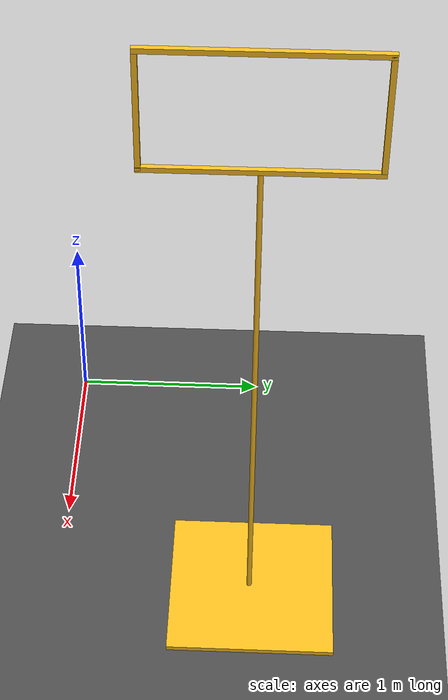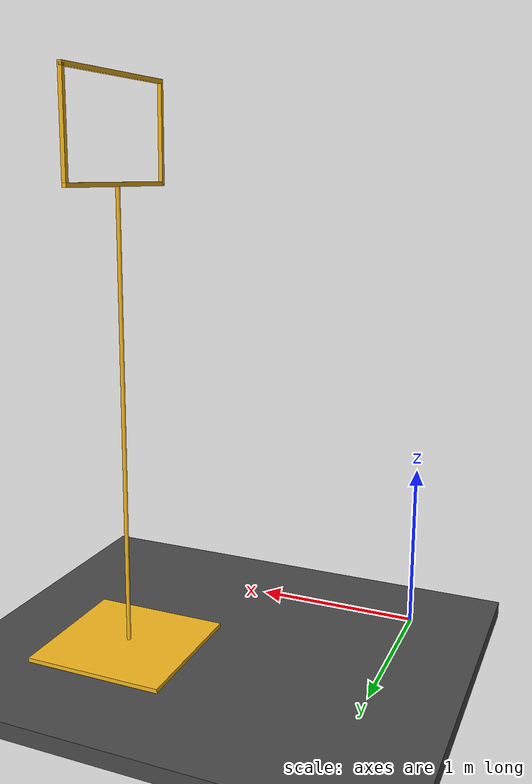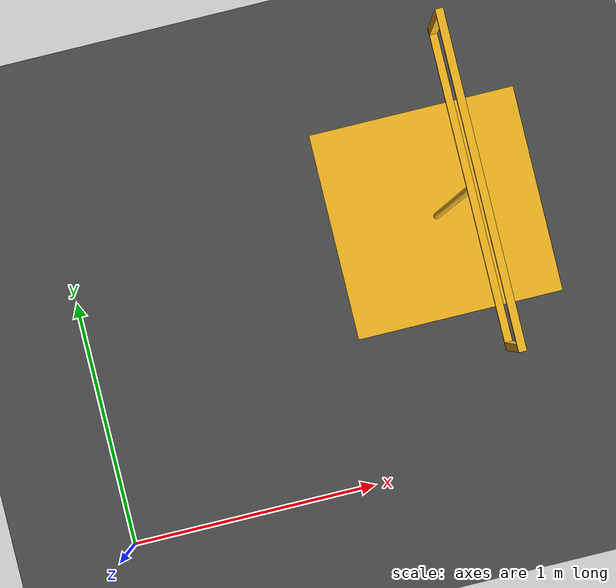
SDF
<sdf version="1.6">
 <world name="default">
  <model name="ground_plane">
   <static>1</static>
   <link name="link">
    <collision name="collision">
     <geometry><plane><normal>0 0 1</normal><size>100 100</size></plane></geometry>
     <surface>
      <contact><collide_bitmask>65535</collide_bitmask></contact>
      <friction><ode><mu>100</mu><mu2>50</mu2></ode></friction>
     </surface>
    </collision>
    <visual name="visual">
     <cast_shadows>0</cast_shadows>
     <geometry><plane><normal>0 0 1</normal><size>100 100</size></plane></geometry>
     <material>
      <script><uri>file://media/materials/scripts/gazebo.material</uri><name>Gazebo/Grey</name></script>
     </material>
    </visual>
   </link>
  </model>
  <model name="asphalt_plane">
   <static>1</static>
   <link name="link">
    <collision name="collision"><geometry><box><size>24.3086 24.3538 0.1</size></box></geometry></collision>
    <visual name="visual">
     <cast_shadows>0</cast_shadows>
     <geometry><box><size>24.3086 24.3538 0.1</size></box></geometry>
     <material>
      <script>
       <uri>model://asphalt_plane/materials/scripts</uri>
       <uri>model://asphalt_plane/materials/textures</uri>
       <name>vrc/asphalt</name>
      </script>
     </material>
    </visual>
   </link>
   <pose>0.83869 0.804741 -0.049 0 -0 0</pose>
  </model>
  <model name="Gate">
   <link name="link_2">
    <inertial>
     <mass>1e-08</mass>
     <inertia><ixx>0</ixx><ixy>0</ixy><ixz>0</ixz><iyy>0</iyy><iyz>0</iyz><izz>0</izz></inertia>
     <pose>0 0 0.0125 0 -0 0</pose>
    </inertial>
    <pose>0 -0 0.0125 0 -0 0</pose>
    <visual name="visual">
     <pose>0 0.0125 0 0 -0 0</pose>
     <geometry><box><size>0.85 0.85 0.025</size></box></geometry>
     <material>
      <lighting>1</lighting>
      <script><uri>file://media/materials/scripts/gazebo.material</uri><name>Gazebo/Grey</name></script>
      <shader type="pixel"><normal_map>__default__</normal_map></shader>
      <ambient>0.988 0.741 0.122 1</ambient>
      <diffuse>0.988 0.741 0.122 1</diffuse>
      <specular>0.988 0.741 0.122 1</specular>
      <emissive>0 0 0 1</emissive>
     </material>
    </visual>
    <collision name="collision">
     <pose>0 0.0125 0 0 -0 0</pose>
     <geometry><box><size>0.85 0.85 0.025</size></box></geometry>
     <surface>
      <friction>
       <ode><mu>1</mu><mu2>1</mu2><fdir1>0 0 0</fdir1><slip1>0</slip1><slip2>0</slip2></ode>
       <torsional>
        <coefficient>1</coefficient>
        <patch_radius>0</patch_radius>
        <surface_radius>0</surface_radius>
        <use_patch_radius>1</use_patch_radius>
        <ode><slip>0</slip></ode>
       </torsional>
      </friction>
      <bounce><restitution_coefficient>0</restitution_coefficient><threshold>1e+06</threshold></bounce>
      <contact>
       <collide_without_contact>0</collide_without_contact>
       <collide_without_contact_bitmask>1</collide_without_contact_bitmask>
       <collide_bitmask>1</collide_bitmask>
       <ode>
        <soft_cfm>0</soft_cfm>
        <soft_erp>0.2</soft_erp>
        <kp>1e+13</kp>
        <kd>1</kd>
        <max_vel>0.01</max_vel>
        <min_depth>0</min_depth>
       </ode>
       <bullet>
        <split_impulse>1</split_impulse>
        <split_impulse_penetration_threshold>-0.01</split_impulse_penetration_threshold>
        <soft_cfm>0</soft_cfm>
        <soft_erp>0.2</soft_erp>
        <kp>1e+13</kp>
        <kd>1</kd>
       </bullet>
      </contact>
     </surface>
    </collision>
   </link>
   <link name="link_3">
    <inertial>
     <mass>1.08113e-08</mass>
     <inertia>
      <ixx>6.71432e-09</ixx>
      <ixy>0</ixy>
      <ixz>0</ixz>
      <iyy>6.71432e-09</iyy>
      <iyz>0</iyz>
      <izz>8.44631e-13</izz>
     </inertia>
     <pose>0 0 1.525 0 -0 0</pose>
    </inertial>
    <pose>0 0 1.37026 0 -0 0</pose>
    <visual name="visual">
     <geometry><cylinder><radius>0.0125</radius><length>2.72985</length></cylinder></geometry>
     <material>
      <lighting>1</lighting>
      <script><uri>file://media/materials/scripts/gazebo.material</uri><name>Gazebo/Grey</name></script>
      <shader type="pixel"><normal_map>__default__</normal_map></shader>
      <ambient>0.988 0.741 0.122 1</ambient>
      <diffuse>0.988 0.741 0.122 1</diffuse>
      <specular>0.988 0.741 0.122 1</specular>
      <emissive>0 0 0 1</emissive>
     </material>
    </visual>
    <collision name="collision">
     <geometry><cylinder><radius>0.0125</radius><length>2.72985</length></cylinder></geometry>
     <surface>
      <friction>
       <ode><mu>1</mu><mu2>1</mu2><fdir1>0 0 0</fdir1><slip1>0</slip1><slip2>0</slip2></ode>
       <torsional>
        <coefficient>1</coefficient>
        <patch_radius>0</patch_radius>
        <surface_radius>0</surface_radius>
        <use_patch_radius>1</use_patch_radius>
        <ode><slip>0</slip></ode>
       </torsional>
      </friction>
      <bounce><restitution_coefficient>0</restitution_coefficient><threshold>1e+06</threshold></bounce>
      <contact>
       <collide_without_contact>0</collide_without_contact>
       <collide_without_contact_bitmask>1</collide_without_contact_bitmask>
       <collide_bitmask>1</collide_bitmask>
       <ode>
        <soft_cfm>0</soft_cfm>
        <soft_erp>0.2</soft_erp>
        <kp>1e+13</kp>
        <kd>1</kd>
        <max_vel>0.01</max_vel>
        <min_depth>0</min_depth>
       </ode>
       <bullet>
        <split_impulse>1</split_impulse>
        <split_impulse_penetration_threshold>-0.01</split_impulse_penetration_threshold>
        <soft_cfm>0</soft_cfm>
        <soft_erp>0.2</soft_erp>
        <kp>1e+13</kp>
        <kd>1</kd>
       </bullet>
      </contact>
     </surface>
    </collision>
   </link>
   <link name="link_5">
    <inertial>
     <mass>1e-08</mass>
     <inertia><ixx>0</ixx><ixy>0</ixy><ixz>0</ixz><iyy>0</iyy><iyz>0</iyz><izz>0</izz></inertia>
     <pose>0 0 2.5 0 -0 0</pose>
    </inertial>
    <pose>-0 -0 2.74233 0 -0 0</pose>
    <visual name="visual">
     <geometry><box><size>0.025 1.05 0.025</size></box></geometry>
     <material>
      <lighting>1</lighting>
      <script><uri>file://media/materials/scripts/gazebo.material</uri><name>Gazebo/Grey</name></script>
      <shader type="pixel"><normal_map>__default__</normal_map></shader>
      <ambient>0.988 0.741 0.122 1</ambient>
      <diffuse>0.988 0.741 0.122 1</diffuse>
      <specular>0.988 0.741 0.122 1</specular>
      <emissive>0 0 0 1</emissive>
     </material>
    </visual>
    <collision name="collision">
     <geometry><box><size>0.025 1.05 0.025</size></box></geometry>
     <surface>
      <friction>
       <ode><mu>1</mu><mu2>1</mu2><fdir1>0 0 0</fdir1><slip1>0</slip1><slip2>0</slip2></ode>
       <torsional>
        <coefficient>1</coefficient>
        <patch_radius>0</patch_radius>
        <surface_radius>0</surface_radius>
        <use_patch_radius>1</use_patch_radius>
        <ode><slip>0</slip></ode>
       </torsional>
      </friction>
      <bounce><restitution_coefficient>0</restitution_coefficient><threshold>1e+06</threshold></bounce>
      <contact>
       <collide_without_contact>0</collide_without_contact>
       <collide_without_contact_bitmask>1</collide_without_contact_bitmask>
       <collide_bitmask>1</collide_bitmask>
       <ode>
        <soft_cfm>0</soft_cfm>
        <soft_erp>0.2</soft_erp>
        <kp>1e+13</kp>
        <kd>1</kd>
        <max_vel>0.01</max_vel>
        <min_depth>0</min_depth>
       </ode>
       <bullet>
        <split_impulse>1</split_impulse>
        <split_impulse_penetration_threshold>-0.01</split_impulse_penetration_threshold>
        <soft_cfm>0</soft_cfm>
        <soft_erp>0.2</soft_erp>
        <kp>1e+13</kp>
        <kd>1</kd>
       </bullet>
      </contact>
     </surface>
    </collision>
   </link>
   <link name="link_5_clone">
    <inertial>
     <mass>1e-08</mass>
     <inertia><ixx>0</ixx><ixy>0</ixy><ixz>0</ixz><iyy>0</iyy><iyz>0</iyz><izz>0</izz></inertia>
     <pose>0 0 3.09 0 -0 0</pose>
    </inertial>
    <pose>-0 -0 3.32441 0 -0 0</pose>
    <visual name="visual">
     <geometry><box><size>0.025 1.05 0.025</size></box></geometry>
     <material>
      <lighting>1</lighting>
      <script><uri>file://media/materials/scripts/gazebo.material</uri><name>Gazebo/Grey</name></script>
      <shader type="pixel"><normal_map>__default__</normal_map></shader>
      <ambient>0.988 0.741 0.122 1</ambient>
      <diffuse>0.988 0.741 0.122 1</diffuse>
      <specular>0.988 0.741 0.122 1</specular>
      <emissive>0 0 0 1</emissive>
     </material>
    </visual>
    <collision name="collision">
     <geometry><box><size>0.025 1.05 0.025</size></box></geometry>
     <surface>
      <friction>
       <ode><mu>1</mu><mu2>1</mu2><fdir1>0 0 0</fdir1><slip1>0</slip1><slip2>0</slip2></ode>
       <torsional>
        <coefficient>1</coefficient>
        <patch_radius>0</patch_radius>
        <surface_radius>0</surface_radius>
        <use_patch_radius>1</use_patch_radius>
        <ode><slip>0</slip></ode>
       </torsional>
      </friction>
      <bounce><restitution_coefficient>0</restitution_coefficient><threshold>1e+06</threshold></bounce>
      <contact>
       <collide_without_contact>0</collide_without_contact>
       <collide_without_contact_bitmask>1</collide_without_contact_bitmask>
       <collide_bitmask>1</collide_bitmask>
       <ode>
        <soft_cfm>0</soft_cfm>
        <soft_erp>0.2</soft_erp>
        <kp>1e+13</kp>
        <kd>1</kd>
        <max_vel>0.01</max_vel>
        <min_depth>0</min_depth>
       </ode>
       <bullet>
        <split_impulse>1</split_impulse>
        <split_impulse_penetration_threshold>-0.01</split_impulse_penetration_threshold>
        <soft_cfm>0</soft_cfm>
        <soft_erp>0.2</soft_erp>
        <kp>1e+13</kp>
        <kd>1</kd>
       </bullet>
      </contact>
     </surface>
    </collision>
   </link>
   <link name="link_6">
    <inertial>
     <mass>1e-08</mass>
     <inertia><ixx>0</ixx><ixy>0</ixy><ixz>0</ixz><iyy>0</iyy><iyz>0</iyz><izz>0</izz></inertia>
     <pose>0 0.5125 2.85 0 -0 0</pose>
    </inertial>
    <pose>-0 0.5125 3.04087 0 -0 0</pose>
    <visual name="visual">
     <geometry><box><size>0.025 0.025 0.575</size></box></geometry>
     <material>
      <lighting>1</lighting>
      <script><uri>file://media/materials/scripts/gazebo.material</uri><name>Gazebo/Grey</name></script>
      <shader type="pixel"><normal_map>__default__</normal_map></shader>
      <ambient>0.988 0.741 0.122 1</ambient>
      <diffuse>0.988 0.741 0.122 1</diffuse>
      <specular>0.988 0.741 0.122 1</specular>
      <emissive>0 0 0 1</emissive>
     </material>
    </visual>
    <collision name="collision">
     <geometry><box><size>0.025 0.025 0.575</size></box></geometry>
     <surface>
      <friction>
       <ode><mu>1</mu><mu2>1</mu2><fdir1>0 0 0</fdir1><slip1>0</slip1><slip2>0</slip2></ode>
       <torsional>
        <coefficient>1</coefficient>
        <patch_radius>0</patch_radius>
        <surface_radius>0</surface_radius>
        <use_patch_radius>1</use_patch_radius>
        <ode><slip>0</slip></ode>
       </torsional>
      </friction>
      <bounce><restitution_coefficient>0</restitution_coefficient><threshold>1e+06</threshold></bounce>
      <contact>
       <collide_without_contact>0</collide_without_contact>
       <collide_without_contact_bitmask>1</collide_without_contact_bitmask>
       <collide_bitmask>1</collide_bitmask>
       <ode>
        <soft_cfm>0</soft_cfm>
        <soft_erp>0.2</soft_erp>
        <kp>1e+13</kp>
        <kd>1</kd>
        <max_vel>0.01</max_vel>
        <min_depth>0</min_depth>
       </ode>
       <bullet>
        <split_impulse>1</split_impulse>
        <split_impulse_penetration_threshold>-0.01</split_impulse_penetration_threshold>
        <soft_cfm>0</soft_cfm>
        <soft_erp>0.2</soft_erp>
        <kp>1e+13</kp>
        <kd>1</kd>
       </bullet>
      </contact>
     </surface>
    </collision>
   </link>
   <link name="link_6_clone">
    <inertial>
     <mass>1e-08</mass>
     <inertia><ixx>0</ixx><ixy>0</ixy><ixz>0</ixz><iyy>0</iyy><iyz>0</iyz><izz>0</izz></inertia>
     <pose>0 -0.5125 2.85 0 -0 0</pose>
    </inertial>
    <pose>-0 -0.5125 3.02444 0 -0 0</pose>
    <visual name="visual">
     <geometry><box><size>0.025 0.025 0.575</size></box></geometry>
     <material>
      <lighting>1</lighting>
      <script><uri>file://media/materials/scripts/gazebo.material</uri><name>Gazebo/Grey</name></script>
      <shader type="pixel"><normal_map>__default__</normal_map></shader>
      <ambient>0.988 0.741 0.122 1</ambient>
      <diffuse>0.988 0.741 0.122 1</diffuse>
      <specular>0.988 0.741 0.122 1</specular>
      <emissive>0 0 0 1</emissive>
     </material>
    </visual>
    <collision name="collision">
     <geometry><box><size>0.025 0.025 0.575</size></box></geometry>
     <surface>
      <friction>
       <ode><mu>1</mu><mu2>1</mu2><fdir1>0 0 0</fdir1><slip1>0</slip1><slip2>0</slip2></ode>
       <torsional>
        <coefficient>1</coefficient>
        <patch_radius>0</patch_radius>
        <surface_radius>0</surface_radius>
        <use_patch_radius>1</use_patch_radius>
        <ode><slip>0</slip></ode>
       </torsional>
      </friction>
      <bounce><restitution_coefficient>0</restitution_coefficient><threshold>1e+06</threshold></bounce>
      <contact>
       <collide_without_contact>0</collide_without_contact>
       <collide_without_contact_bitmask>1</collide_without_contact_bitmask>
       <collide_bitmask>1</collide_bitmask>
       <ode>
        <soft_cfm>0</soft_cfm>
        <soft_erp>0.2</soft_erp>
        <kp>1e+13</kp>
        <kd>1</kd>
        <max_vel>0.01</max_vel>
        <min_depth>0</min_depth>
       </ode>
       <bullet>
        <split_impulse>1</split_impulse>
        <split_impulse_penetration_threshold>-0.01</split_impulse_penetration_threshold>
        <soft_cfm>0</soft_cfm>
        <soft_erp>0.2</soft_erp>
        <kp>1e+13</kp>
        <kd>1</kd>
       </bullet>
      </contact>
     </surface>
    </collision>
   </link>
   <joint name="link_2_JOINT_2" type="fixed">
    <parent>link_2</parent>
    <child>link_3</child>
    <physics>
     <ode><limit><cfm>0</cfm><erp>0.2</erp></limit><suspension><cfm>0</cfm><erp>0.2</erp></suspension></ode>
    </physics>
   </joint>
   <joint name="link_3_JOINT_3" type="fixed">
    <parent>link_3</parent>
    <child>link_5</child>
    <physics>
     <ode><limit><cfm>0</cfm><erp>0.2</erp></limit><suspension><cfm>0</cfm><erp>0.2</erp></suspension></ode>
    </physics>
   </joint>
   <joint name="link_5_JOINT_0" type="fixed">
    <parent>link_5</parent>
    <child>link_6_clone</child>
    <physics>
     <ode><limit><cfm>0</cfm><erp>0.2</erp></limit><suspension><cfm>0</cfm><erp>0.2</erp></suspension></ode>
    </physics>
   </joint>
   <joint name="link_5_JOINT_1" type="fixed">
    <parent>link_5</parent>
    <child>link_6</child>
    <physics>
     <ode><limit><cfm>0</cfm><erp>0.2</erp></limit><suspension><cfm>0</cfm><erp>0.2</erp></suspension></ode>
    </physics>
   </joint>
   <joint name="link_6_JOINT_3" type="fixed">
    <parent>link_6</parent>
    <child>link_5_clone</child>
    <physics>
     <ode><limit><cfm>0</cfm><erp>0.2</erp></limit><suspension><cfm>0</cfm><erp>0.2</erp></suspension></ode>
    </physics>
   </joint>
   <joint name="link_6_clone_JOINT_2" type="fixed">
    <parent>link_6_clone</parent>
    <child>link_5_clone</child>
    <physics>
     <ode><limit><cfm>0</cfm><erp>0.2</erp></limit><suspension><cfm>0</cfm><erp>0.2</erp></suspension></ode>
    </physics>
   </joint>
   <static>0</static>
   <pose>1.5 1 0.001002 3e-06 3e-06 0</pose>
  </model>
 </world>
</sdf>
